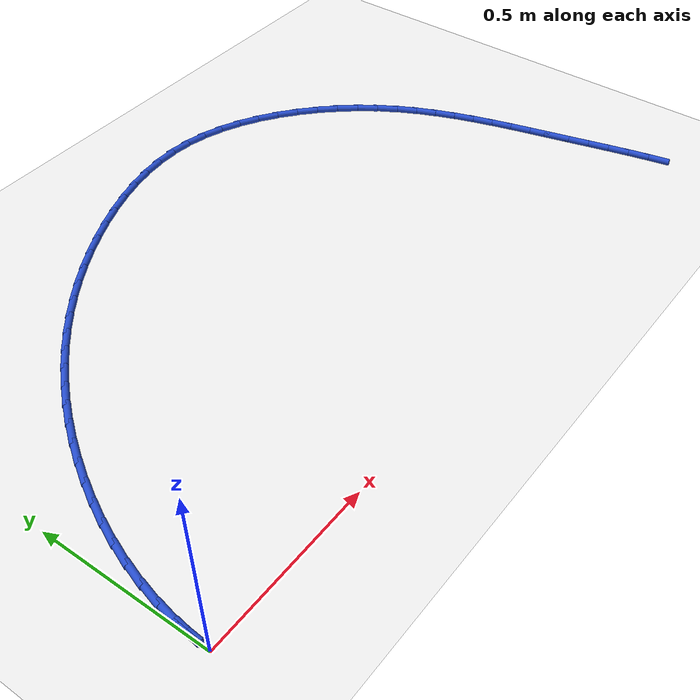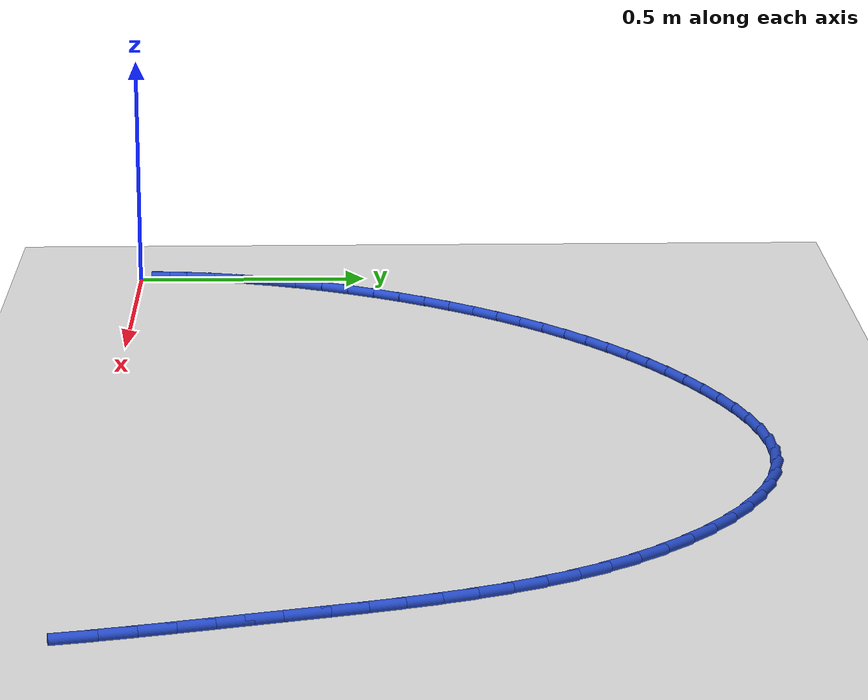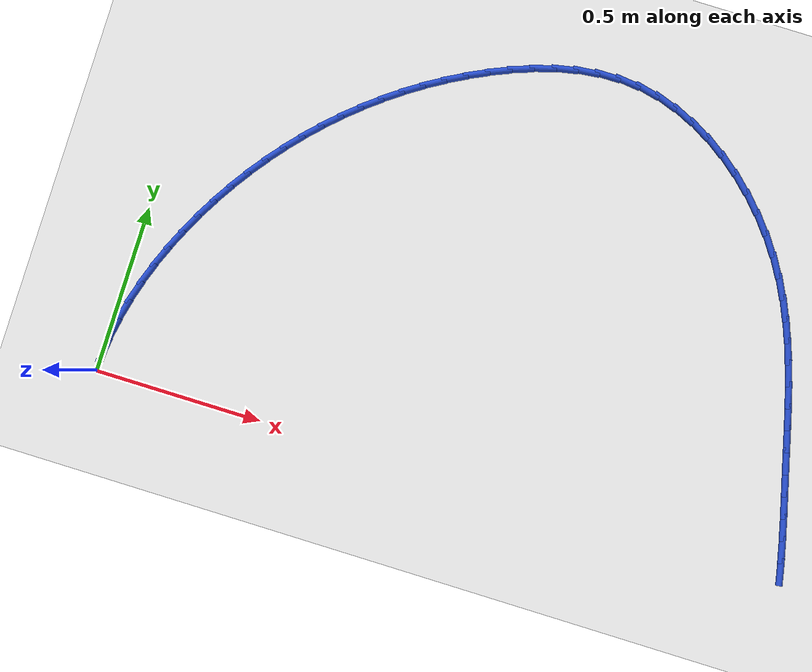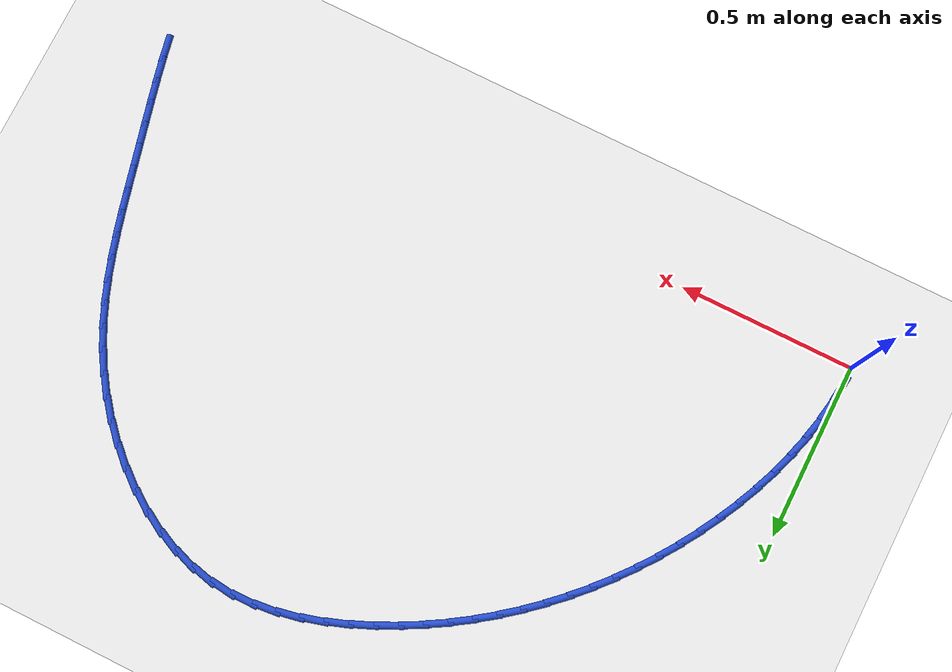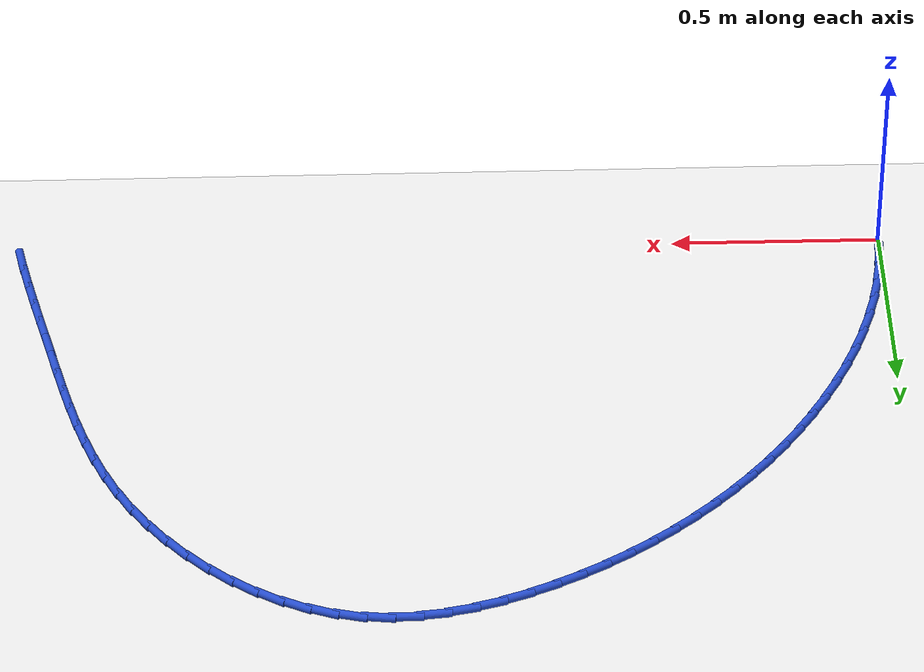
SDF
<sdf version="1.6">
 <world name="default">
  <model name="ground_plane">
   <static>1</static>
   <link name="link">
    <collision name="collision">
     <geometry><plane><normal>0 0 1</normal><size>100 100</size></plane></geometry>
     <surface><friction><ode><mu>100</mu><mu2>50</mu2></ode></friction></surface>
    </collision>
    <visual name="visual">
     <cast_shadows>0</cast_shadows>
     <geometry><plane><normal>0 0 1</normal><size>100 100</size></plane></geometry>
     <material>
      <script><uri>file://media/materials/scripts/gazebo.material</uri><name>Gazebo/WhiteGlow</name></script>
     </material>
    </visual>
   </link>
  </model>
  <model name="line">
   <link name="link_1">
    <pose>0.0032852836792644936 0.06355695641453675 0.01 0 1.57 1.4517525794886075</pose>
    <collision name="collision">
     <geometry><cylinder><radius>0.01</radius><length>0.08</length></cylinder></geometry>
    </collision>
    <visual name="visual">
     <material>
      <script><name>Gazebo/Blue</name><uri>file://media/materials/scripts/gazebo.material</uri></script>
     </material>
     <geometry><cylinder><radius>0.01</radius><length>0.08</length></cylinder></geometry>
    </visual>
   </link>
   <link name="link_2">
    <pose>0.010834183985885508 0.126669948162865 0.01 0 1.57 1.3880498268081956</pose>
    <collision name="collision">
     <geometry><cylinder><radius>0.01</radius><length>0.08</length></cylinder></geometry>
    </collision>
    <visual name="visual">
     <material>
      <script><name>Gazebo/Blue</name><uri>file://media/materials/scripts/gazebo.material</uri></script>
     </material>
     <geometry><cylinder><radius>0.01</radius><length>0.08</length></cylinder></geometry>
    </visual>
   </link>
   <link name="link_3">
    <pose>0.022394339055184558 0.1892220567013101 0.01 0 1.57 1.328093450747287</pose>
    <collision name="collision">
     <geometry><cylinder><radius>0.01</radius><length>0.08</length></cylinder></geometry>
    </collision>
    <visual name="visual">
     <material>
      <script><name>Gazebo/Blue</name><uri>file://media/materials/scripts/gazebo.material</uri></script>
     </material>
     <geometry><cylinder><radius>0.01</radius><length>0.08</length></cylinder></geometry>
    </visual>
   </link>
   <link name="link_4">
    <pose>0.03771338702248321 0.251096363486198 0.01 0 1.57 1.2718209619561152</pose>
    <collision name="collision">
     <geometry><cylinder><radius>0.01</radius><length>0.08</length></cylinder></geometry>
    </collision>
    <visual name="visual">
     <material>
      <script><name>Gazebo/Blue</name><uri>file://media/materials/scripts/gazebo.material</uri></script>
     </material>
     <geometry><cylinder><radius>0.01</radius><length>0.08</length></cylinder></geometry>
    </visual>
   </link>
   <link name="link_5">
    <pose>0.05653896602310301 0.3121759499738542 0.01 0 1.57 1.219085398320283</pose>
    <collision name="collision">
     <geometry><cylinder><radius>0.01</radius><length>0.08</length></cylinder></geometry>
    </collision>
    <visual name="visual">
     <material>
      <script><name>Gazebo/Blue</name><uri>file://media/materials/scripts/gazebo.material</uri></script>
     </material>
     <geometry><cylinder><radius>0.01</radius><length>0.08</length></cylinder></geometry>
    </visual>
   </link>
   <link name="link_6">
    <pose>0.07861871419236541 0.37234389762060394 0.01 0 1.57 1.169680494458362</pose>
    <collision name="collision">
     <geometry><cylinder><radius>0.01</radius><length>0.08</length></cylinder></geometry>
    </collision>
    <visual name="visual">
     <material>
      <script><name>Gazebo/Blue</name><uri>file://media/materials/scripts/gazebo.material</uri></script>
     </material>
     <geometry><cylinder><radius>0.01</radius><length>0.08</length></cylinder></geometry>
    </visual>
   </link>
   <link name="link_7">
    <pose>0.10370026966559204 0.43148328788277324 0.01 0 1.57 1.1233615335534624</pose>
    <collision name="collision">
     <geometry><cylinder><radius>0.01</radius><length>0.08</length></cylinder></geometry>
    </collision>
    <visual name="visual">
     <material>
      <script><name>Gazebo/Blue</name><uri>file://media/materials/scripts/gazebo.material</uri></script>
     </material>
     <geometry><cylinder><radius>0.01</radius><length>0.08</length></cylinder></geometry>
    </visual>
   </link>
   <link name="link_8">
    <pose>0.13153127057810438 0.4894772022166874 0.01 0 1.57 1.079860983386931</pose>
    <collision name="collision">
     <geometry><cylinder><radius>0.01</radius><length>0.08</length></cylinder></geometry>
    </collision>
    <visual name="visual">
     <material>
      <script><name>Gazebo/Blue</name><uri>file://media/materials/scripts/gazebo.material</uri></script>
     </material>
     <geometry><cylinder><radius>0.01</radius><length>0.08</length></cylinder></geometry>
    </visual>
   </link>
   <link name="link_9">
    <pose>0.16185938823858761 0.546208728107812 0.01 0 1.57 1.0383617749348306</pose>
    <collision name="collision">
     <geometry><cylinder><radius>0.01</radius><length>0.08</length></cylinder></geometry>
    </collision>
    <visual name="visual">
     <material>
      <script><name>Gazebo/Blue</name><uri>file://media/materials/scripts/gazebo.material</uri></script>
     </material>
     <geometry><cylinder><radius>0.01</radius><length>0.08</length></cylinder></geometry>
    </visual>
   </link>
   <link name="link_10">
    <pose>0.19447729656025886 0.6015691321031658 0.01 0 1.57 0.9970833001065849</pose>
    <collision name="collision">
     <geometry><cylinder><radius>0.01</radius><length>0.08</length></cylinder></geometry>
    </collision>
    <visual name="visual">
     <material>
      <script><name>Gazebo/Blue</name><uri>file://media/materials/scripts/gazebo.material</uri></script>
     </material>
     <geometry><cylinder><radius>0.01</radius><length>0.08</length></cylinder></geometry>
    </visual>
   </link>
   <link name="link_11">
    <pose>0.2293117031021381 0.6554740408829375 0.01 0 1.57 0.9556784181797072</pose>
    <collision name="collision">
     <geometry><cylinder><radius>0.01</radius><length>0.08</length></cylinder></geometry>
    </collision>
    <visual name="visual">
     <material>
      <script><name>Gazebo/Blue</name><uri>file://media/materials/scripts/gazebo.material</uri></script>
     </material>
     <geometry><cylinder><radius>0.01</radius><length>0.08</length></cylinder></geometry>
    </visual>
   </link>
   <link name="link_12">
    <pose>0.2663141569486794 0.7078435959852385 0.01 0 1.57 0.9141081255478017</pose>
    <collision name="collision">
     <geometry><cylinder><radius>0.01</radius><length>0.08</length></cylinder></geometry>
    </collision>
    <visual name="visual">
     <material>
      <script><name>Gazebo/Blue</name><uri>file://media/materials/scripts/gazebo.material</uri></script>
     </material>
     <geometry><cylinder><radius>0.01</radius><length>0.08</length></cylinder></geometry>
    </visual>
   </link>
   <link name="link_13">
    <pose>0.30543620718433667 0.7585979389481801 0.01 0 1.57 0.872334837784852</pose>
    <collision name="collision">
     <geometry><cylinder><radius>0.01</radius><length>0.08</length></cylinder></geometry>
    </collision>
    <visual name="visual">
     <material>
      <script><name>Gazebo/Blue</name><uri>file://media/materials/scripts/gazebo.material</uri></script>
     </material>
     <geometry><cylinder><radius>0.01</radius><length>0.08</length></cylinder></geometry>
    </visual>
   </link>
   <link name="link_14">
    <pose>0.3466294028935635 0.8076572113098732 0.01 0 1.57 0.8303230818568028</pose>
    <collision name="collision">
     <geometry><cylinder><radius>0.01</radius><length>0.08</length></cylinder></geometry>
    </collision>
    <visual name="visual">
     <material>
      <script><name>Gazebo/Blue</name><uri>file://media/materials/scripts/gazebo.material</uri></script>
     </material>
     <geometry><cylinder><radius>0.01</radius><length>0.08</length></cylinder></geometry>
    </visual>
   </link>
   <link name="link_15">
    <pose>0.3898452931608141 0.8549415546084302 0.01 0 1.57 0.7880402084933067</pose>
    <collision name="collision">
     <geometry><cylinder><radius>0.01</radius><length>0.08</length></cylinder></geometry>
    </collision>
    <visual name="visual">
     <material>
      <script><name>Gazebo/Blue</name><uri>file://media/materials/scripts/gazebo.material</uri></script>
     </material>
     <geometry><cylinder><radius>0.01</radius><length>0.08</length></cylinder></geometry>
    </visual>
   </link>
   <link name="link_16">
    <pose>0.43503542707054205 0.9003711103819613 0.01 0 1.57 0.7454571224798461</pose>
    <collision name="collision">
     <geometry><cylinder><radius>0.01</radius><length>0.08</length></cylinder></geometry>
    </collision>
    <visual name="visual">
     <material>
      <script><name>Gazebo/Blue</name><uri>file://media/materials/scripts/gazebo.material</uri></script>
     </material>
     <geometry><cylinder><radius>0.01</radius><length>0.08</length></cylinder></geometry>
    </visual>
   </link>
   <link name="link_17">
    <pose>0.4821513537072016 0.9438660201685787 0.01 0 1.57 0.7025490256778014</pose>
    <collision name="collision">
     <geometry><cylinder><radius>0.01</radius><length>0.08</length></cylinder></geometry>
    </collision>
    <visual name="visual">
     <material>
      <script><name>Gazebo/Blue</name><uri>file://media/materials/scripts/gazebo.material</uri></script>
     </material>
     <geometry><cylinder><radius>0.01</radius><length>0.08</length></cylinder></geometry>
    </visual>
   </link>
   <link name="link_18">
    <pose>0.5311446221552462 0.9853464255063928 0.01 0 1.57 0.6592961640274405</pose>
    <collision name="collision">
     <geometry><cylinder><radius>0.01</radius><length>0.08</length></cylinder></geometry>
    </collision>
    <visual name="visual">
     <material>
      <script><name>Gazebo/Blue</name><uri>file://media/materials/scripts/gazebo.material</uri></script>
     </material>
     <geometry><cylinder><radius>0.01</radius><length>0.08</length></cylinder></geometry>
    </visual>
   </link>
   <link name="link_19">
    <pose>0.5819667814991301 1.024732467933516 0.01 0 1.57 0.615684565750557</pose>
    <collision name="collision">
     <geometry><cylinder><radius>0.01</radius><length>0.08</length></cylinder></geometry>
    </collision>
    <visual name="visual">
     <material>
      <script><name>Gazebo/Blue</name><uri>file://media/materials/scripts/gazebo.material</uri></script>
     </material>
     <geometry><cylinder><radius>0.01</radius><length>0.08</length></cylinder></geometry>
    </visual>
   </link>
   <link name="link_20">
    <pose>0.6345693808233068 1.0619442889880588 0.01 0 1.57 0.571706753635723</pose>
    <collision name="collision">
     <geometry><cylinder><radius>0.01</radius><length>0.08</length></cylinder></geometry>
    </collision>
    <visual name="visual">
     <material>
      <script><name>Gazebo/Blue</name><uri>file://media/materials/scripts/gazebo.material</uri></script>
     </material>
     <geometry><cylinder><radius>0.01</radius><length>0.08</length></cylinder></geometry>
    </visual>
   </link>
   <link name="link_21">
    <pose>0.6889039692122304 1.0969020302081327 0.01 0 1.57 0.5273624099324696</pose>
    <collision name="collision">
     <geometry><cylinder><radius>0.01</radius><length>0.08</length></cylinder></geometry>
    </collision>
    <visual name="visual">
     <material>
      <script><name>Gazebo/Blue</name><uri>file://media/materials/scripts/gazebo.material</uri></script>
     </material>
     <geometry><cylinder><radius>0.01</radius><length>0.08</length></cylinder></geometry>
    </visual>
   </link>
   <link name="link_22">
    <pose>0.744922095750355 1.1295258331318494 0.01 0 1.57 0.4826589683662222</pose>
    <collision name="collision">
     <geometry><cylinder><radius>0.01</radius><length>0.08</length></cylinder></geometry>
    </collision>
    <visual name="visual">
     <material>
      <script><name>Gazebo/Blue</name><uri>file://media/materials/scripts/gazebo.material</uri></script>
     </material>
     <geometry><cylinder><radius>0.01</radius><length>0.08</length></cylinder></geometry>
    </visual>
   </link>
   <link name="link_23">
    <pose>0.8025753095221341 1.15973583929732 0.01 0 1.57 0.43751893349559245</pose>
    <collision name="collision">
     <geometry><cylinder><radius>0.01</radius><length>0.08</length></cylinder></geometry>
    </collision>
    <visual name="visual">
     <material>
      <script><name>Gazebo/Blue</name><uri>file://media/materials/scripts/gazebo.material</uri></script>
     </material>
     <geometry><cylinder><radius>0.01</radius><length>0.08</length></cylinder></geometry>
    </visual>
   </link>
   <link name="link_24">
    <pose>0.8618113246228886 1.187443669066937 0.01 0 1.57 0.38873892316470765</pose>
    <collision name="collision">
     <geometry><cylinder><radius>0.01</radius><length>0.08</length></cylinder></geometry>
    </collision>
    <visual name="visual">
     <material>
      <script><name>Gazebo/Blue</name><uri>file://media/materials/scripts/gazebo.material</uri></script>
     </material>
     <geometry><cylinder><radius>0.01</radius><length>0.08</length></cylinder></geometry>
    </visual>
   </link>
   <link name="link_25">
    <pose>0.9224518184348016 1.2122808948179882 0.01 0 1.57 0.33177635778665737</pose>
    <collision name="collision">
     <geometry><cylinder><radius>0.01</radius><length>0.08</length></cylinder></geometry>
    </collision>
    <visual name="visual">
     <material>
      <script><name>Gazebo/Blue</name><uri>file://media/materials/scripts/gazebo.material</uri></script>
     </material>
     <geometry><cylinder><radius>0.01</radius><length>0.08</length></cylinder></geometry>
    </visual>
   </link>
   <link name="link_26">
    <pose>0.9841669526507429 1.23354242778794 0.01 0 1.57 0.2651892281506431</pose>
    <collision name="collision">
     <geometry><cylinder><radius>0.01</radius><length>0.08</length></cylinder></geometry>
    </collision>
    <visual name="visual">
     <material>
      <script><name>Gazebo/Blue</name><uri>file://media/materials/scripts/gazebo.material</uri></script>
     </material>
     <geometry><cylinder><radius>0.01</radius><length>0.08</length></cylinder></geometry>
    </visual>
   </link>
   <link name="link_27">
    <pose>1.0466179039677175 1.2505032149520576 0.01 0 1.57 0.18766794079214746</pose>
    <collision name="collision">
     <geometry><cylinder><radius>0.01</radius><length>0.08</length></cylinder></geometry>
    </collision>
    <visual name="visual">
     <material>
      <script><name>Gazebo/Blue</name><uri>file://media/materials/scripts/gazebo.material</uri></script>
     </material>
     <geometry><cylinder><radius>0.01</radius><length>0.08</length></cylinder></geometry>
    </visual>
   </link>
   <link name="link_28">
    <pose>1.1094658490827283 1.2624382032856039 0.01 0 1.57 0.09799252857023347</pose>
    <collision name="collision">
     <geometry><cylinder><radius>0.01</radius><length>0.08</length></cylinder></geometry>
    </collision>
    <visual name="visual">
     <material>
      <script><name>Gazebo/Blue</name><uri>file://media/materials/scripts/gazebo.material</uri></script>
     </material>
     <geometry><cylinder><radius>0.01</radius><length>0.08</length></cylinder></geometry>
    </visual>
   </link>
   <link name="link_29">
    <pose>1.1723719646927822 1.2686223397638443 0.01 0 1.57 -0.004658908337895533</pose>
    <collision name="collision">
     <geometry><cylinder><radius>0.01</radius><length>0.08</length></cylinder></geometry>
    </collision>
    <visual name="visual">
     <material>
      <script><name>Gazebo/Blue</name><uri>file://media/materials/scripts/gazebo.material</uri></script>
     </material>
     <geometry><cylinder><radius>0.01</radius><length>0.08</length></cylinder></geometry>
    </visual>
   </link>
   <link name="link_30">
    <pose>1.2349974274948816 1.268330571362042 0.01 0 1.57 -0.1200609073179534</pose>
    <collision name="collision">
     <geometry><cylinder><radius>0.01</radius><length>0.08</length></cylinder></geometry>
    </collision>
    <visual name="visual">
     <material>
      <script><name>Gazebo/Blue</name><uri>file://media/materials/scripts/gazebo.material</uri></script>
     </material>
     <geometry><cylinder><radius>0.01</radius><length>0.08</length></cylinder></geometry>
    </visual>
   </link>
   <link name="link_31">
    <pose>1.2970032095732906 1.2608501237122356 0.01 0 1.57 -0.23860511812063318</pose>
    <collision name="collision">
     <geometry><cylinder><radius>0.01</radius><length>0.08</length></cylinder></geometry>
    </collision>
    <visual name="visual">
     <material>
      <script><name>Gazebo/Blue</name><uri>file://media/materials/scripts/gazebo.material</uri></script>
     </material>
     <geometry><cylinder><radius>0.01</radius><length>0.08</length></cylinder></geometry>
    </visual>
   </link>
   <link name="link_32">
    <pose>1.3580413668241254 1.2460032761927267 0.01 0 1.57 -0.347996704862966</pose>
    <collision name="collision">
     <geometry><cylinder><radius>0.01</radius><length>0.08</length></cylinder></geometry>
    </collision>
    <visual name="visual">
     <material>
      <script><name>Gazebo/Blue</name><uri>file://media/materials/scripts/gazebo.material</uri></script>
     </material>
     <geometry><cylinder><radius>0.01</radius><length>0.08</length></cylinder></geometry>
    </visual>
   </link>
   <link name="link_33">
    <pose>1.4177517833228344 1.2243427299875842 0.01 0 1.57 -0.447780378503715</pose>
    <collision name="collision">
     <geometry><cylinder><radius>0.01</radius><length>0.08</length></cylinder></geometry>
    </collision>
    <visual name="visual">
     <material>
      <script><name>Gazebo/Blue</name><uri>file://media/materials/scripts/gazebo.material</uri></script>
     </material>
     <geometry><cylinder><radius>0.01</radius><length>0.08</length></cylinder></geometry>
    </visual>
   </link>
   <link name="link_34">
    <pose>1.4757734675667995 1.1964737290623806 0.01 0 1.57 -0.5389605019919883</pose>
    <collision name="collision">
     <geometry><cylinder><radius>0.01</radius><length>0.08</length></cylinder></geometry>
    </collision>
    <visual name="visual">
     <material>
      <script><name>Gazebo/Blue</name><uri>file://media/materials/scripts/gazebo.material</uri></script>
     </material>
     <geometry><cylinder><radius>0.01</radius><length>0.08</length></cylinder></geometry>
    </visual>
   </link>
   <link name="link_35">
    <pose>1.5317454280534015 1.1630015173826878 0.01 0 1.57 -0.622867277512043</pose>
    <collision name="collision">
     <geometry><cylinder><radius>0.01</radius><length>0.08</length></cylinder></geometry>
    </collision>
    <visual name="visual">
     <material>
      <script><name>Gazebo/Blue</name><uri>file://media/materials/scripts/gazebo.material</uri></script>
     </material>
     <geometry><cylinder><radius>0.01</radius><length>0.08</length></cylinder></geometry>
    </visual>
   </link>
   <link name="link_36">
    <pose>1.585306673280022 1.1245313389140785 0.01 0 1.57 -0.7009605340540436</pose>
    <collision name="collision">
     <geometry><cylinder><radius>0.01</radius><length>0.08</length></cylinder></geometry>
    </collision>
    <visual name="visual">
     <material>
      <script><name>Gazebo/Blue</name><uri>file://media/materials/scripts/gazebo.material</uri></script>
     </material>
     <geometry><cylinder><radius>0.01</radius><length>0.08</length></cylinder></geometry>
    </visual>
   </link>
   <link name="link_37">
    <pose>1.6360962117440416 1.0816684376221248 0.01 0 1.57 -0.7747264265162331</pose>
    <collision name="collision">
     <geometry><cylinder><radius>0.01</radius><length>0.08</length></cylinder></geometry>
    </collision>
    <visual name="visual">
     <material>
      <script><name>Gazebo/Blue</name><uri>file://media/materials/scripts/gazebo.material</uri></script>
     </material>
     <geometry><cylinder><radius>0.01</radius><length>0.08</length></cylinder></geometry>
    </visual>
   </link>
   <link name="link_38">
    <pose>1.6837530519428416 1.0350180574723988 0.01 0 1.57 -0.8456413488634422</pose>
    <collision name="collision">
     <geometry><cylinder><radius>0.01</radius><length>0.08</length></cylinder></geometry>
    </collision>
    <visual name="visual">
     <material>
      <script><name>Gazebo/Blue</name><uri>file://media/materials/scripts/gazebo.material</uri></script>
     </material>
     <geometry><cylinder><radius>0.01</radius><length>0.08</length></cylinder></geometry>
    </visual>
   </link>
   <link name="link_39">
    <pose>1.7279162023738026 0.9851854424304727 0.01 0 1.57 -0.9151799700482591</pose>
    <collision name="collision">
     <geometry><cylinder><radius>0.01</radius><length>0.08</length></cylinder></geometry>
    </collision>
    <visual name="visual">
     <material>
      <script><name>Gazebo/Blue</name><uri>file://media/materials/scripts/gazebo.material</uri></script>
     </material>
     <geometry><cylinder><radius>0.01</radius><length>0.08</length></cylinder></geometry>
    </visual>
   </link>
   <link name="link_40">
    <pose>1.768224671534306 0.932775836461919 0.01 0 1.57 -0.9848389341198373</pose>
    <collision name="collision">
     <geometry><cylinder><radius>0.01</radius><length>0.08</length></cylinder></geometry>
    </collision>
    <visual name="visual">
     <material>
      <script><name>Gazebo/Blue</name><uri>file://media/materials/scripts/gazebo.material</uri></script>
     </material>
     <geometry><cylinder><radius>0.01</radius><length>0.08</length></cylinder></geometry>
    </visual>
   </link>
   <link name="link_41">
    <pose>1.8043189873359753 0.8783937075547905 0.01 0 1.57 -1.053719617317044</pose>
    <collision name="collision">
     <geometry><cylinder><radius>0.01</radius><length>0.08</length></cylinder></geometry>
    </collision>
    <visual name="visual">
     <material>
      <script><name>Gazebo/Blue</name><uri>file://media/materials/scripts/gazebo.material</uri></script>
     </material>
     <geometry><cylinder><radius>0.01</radius><length>0.08</length></cylinder></geometry>
    </visual>
   </link>
   <link name="link_42">
    <pose>1.8360985632926845 0.8225113086619338 0.01 0 1.57 -1.116733350851094</pose>
    <collision name="collision">
     <geometry><cylinder><radius>0.01</radius><length>0.08</length></cylinder></geometry>
    </collision>
    <visual name="visual">
     <material>
      <script><name>Gazebo/Blue</name><uri>file://media/materials/scripts/gazebo.material</uri></script>
     </material>
     <geometry><cylinder><radius>0.01</radius><length>0.08</length></cylinder></geometry>
    </visual>
   </link>
   <link name="link_43">
    <pose>1.8640120846591435 0.7653203750792816 0.01 0 1.57 -1.1722656158426257</pose>
    <collision name="collision">
     <geometry><cylinder><radius>0.01</radius><length>0.08</length></cylinder></geometry>
    </collision>
    <visual name="visual">
     <material>
      <script><name>Gazebo/Blue</name><uri>file://media/materials/scripts/gazebo.material</uri></script>
     </material>
     <geometry><cylinder><radius>0.01</radius><length>0.08</length></cylinder></geometry>
    </visual>
   </link>
   <link name="link_44">
    <pose>1.8885783546012005 0.7069768323010288 0.01 0 1.57 -1.2196525449637912</pose>
    <collision name="collision">
     <geometry><cylinder><radius>0.01</radius><length>0.08</length></cylinder></geometry>
    </collision>
    <visual name="visual">
     <material>
      <script><name>Gazebo/Blue</name><uri>file://media/materials/scripts/gazebo.material</uri></script>
     </material>
     <geometry><cylinder><radius>0.01</radius><length>0.08</length></cylinder></geometry>
    </visual>
   </link>
   <link name="link_45">
    <pose>1.910316176284703 0.647636605821371 0.01 0 1.57 -1.2585291316010665</pose>
    <collision name="collision">
     <geometry><cylinder><radius>0.01</radius><length>0.08</length></cylinder></geometry>
    </collision>
    <visual name="visual">
     <material>
      <script><name>Gazebo/Blue</name><uri>file://media/materials/scripts/gazebo.material</uri></script>
     </material>
     <geometry><cylinder><radius>0.01</radius><length>0.08</length></cylinder></geometry>
    </visual>
   </link>
   <link name="link_46">
    <pose>1.9297443528754958 0.587455621134502 0.01 0 1.57 -1.288747335360709</pose>
    <collision name="collision">
     <geometry><cylinder><radius>0.01</radius><length>0.08</length></cylinder></geometry>
    </collision>
    <visual name="visual">
     <material>
      <script><name>Gazebo/Blue</name><uri>file://media/materials/scripts/gazebo.material</uri></script>
     </material>
     <geometry><cylinder><radius>0.01</radius><length>0.08</length></cylinder></geometry>
    </visual>
   </link>
   <link name="link_47">
    <pose>1.9473816875394285 0.5265898037346175 0.01 0 1.57 -1.3102947681176838</pose>
    <collision name="collision">
     <geometry><cylinder><radius>0.01</radius><length>0.08</length></cylinder></geometry>
    </collision>
    <visual name="visual">
     <material>
      <script><name>Gazebo/Blue</name><uri>file://media/materials/scripts/gazebo.material</uri></script>
     </material>
     <geometry><cylinder><radius>0.01</radius><length>0.08</length></cylinder></geometry>
    </visual>
   </link>
   <link name="link_48">
    <pose>1.9637469834423467 0.4651950791159121 0.01 0 1.57 -1.3232269605722418</pose>
    <collision name="collision">
     <geometry><cylinder><radius>0.01</radius><length>0.08</length></cylinder></geometry>
    </collision>
    <visual name="visual">
     <material>
      <script><name>Gazebo/Blue</name><uri>file://media/materials/scripts/gazebo.material</uri></script>
     </material>
     <geometry><cylinder><radius>0.01</radius><length>0.08</length></cylinder></geometry>
    </visual>
   </link>
   <link name="link_49">
    <pose>1.9793590437500972 0.4034273727725809 0.01 0 1.57 -1.3276187290260235</pose>
    <collision name="collision">
     <geometry><cylinder><radius>0.01</radius><length>0.08</length></cylinder></geometry>
    </collision>
    <visual name="visual">
     <material>
      <script><name>Gazebo/Blue</name><uri>file://media/materials/scripts/gazebo.material</uri></script>
     </material>
     <geometry><cylinder><radius>0.01</radius><length>0.08</length></cylinder></geometry>
    </visual>
   </link>
   <link name="link_50">
    <pose>1.9947366716285284 0.3414426101988187 0.01 0 1.57 -1.325474322729032</pose>
    <collision name="collision">
     <geometry><cylinder><radius>0.01</radius><length>0.08</length></cylinder></geometry>
    </collision>
    <visual name="visual">
     <material>
      <script><name>Gazebo/Blue</name><uri>file://media/materials/scripts/gazebo.material</uri></script>
     </material>
     <geometry><cylinder><radius>0.01</radius><length>0.08</length></cylinder></geometry>
    </visual>
   </link>
   <link name="link_51">
    <pose>2.0102769256238755 0.2793721751122559 0.01 0 1.57 -1.3257789313719166</pose>
    <collision name="collision">
     <geometry><cylinder><radius>0.01</radius><length>0.08</length></cylinder></geometry>
    </collision>
    <visual name="visual">
     <material>
      <script><name>Gazebo/Blue</name><uri>file://media/materials/scripts/gazebo.material</uri></script>
     </material>
     <geometry><cylinder><radius>0.01</radius><length>0.08</length></cylinder></geometry>
    </visual>
   </link>
   <link name="link_52">
    <pose>2.025814028479434 0.21723399249565276 0.01 0 1.57 -1.331112130635456</pose>
    <collision name="collision">
     <geometry><cylinder><radius>0.01</radius><length>0.08</length></cylinder></geometry>
    </collision>
    <visual name="visual">
     <material>
      <script><name>Gazebo/Blue</name><uri>file://media/materials/scripts/gazebo.material</uri></script>
     </material>
     <geometry><cylinder><radius>0.01</radius><length>0.08</length></cylinder></geometry>
    </visual>
   </link>
   <link name="link_53">
    <pose>2.0410196654963815 0.1550132223718016 0.01 0 1.57 -1.3414894126625896</pose>
    <collision name="collision">
     <geometry><cylinder><radius>0.01</radius><length>0.08</length></cylinder></geometry>
    </collision>
    <visual name="visual">
     <material>
      <script><name>Gazebo/Blue</name><uri>file://media/materials/scripts/gazebo.material</uri></script>
     </material>
     <geometry><cylinder><radius>0.01</radius><length>0.08</length></cylinder></geometry>
    </visual>
   </link>
   <link name="link_54">
    <pose>2.055565506174149 0.09269502157811457 0.01 0 1.57 -1.3569517482541893</pose>
    <collision name="collision">
     <geometry><cylinder><radius>0.01</radius><length>0.08</length></cylinder></geometry>
    </collision>
    <visual name="visual">
     <material>
      <script><name>Gazebo/Blue</name><uri>file://media/materials/scripts/gazebo.material</uri></script>
     </material>
     <geometry><cylinder><radius>0.01</radius><length>0.08</length></cylinder></geometry>
    </visual>
   </link>
   <link name="link_55">
    <pose>2.0691232200121688 0.030264546952003528 0.01 0 1.57 -1.3775582435233633</pose>
    <collision name="collision">
     <geometry><cylinder><radius>0.01</radius><length>0.08</length></cylinder></geometry>
    </collision>
    <visual name="visual">
     <material>
      <script><name>Gazebo/Blue</name><uri>file://media/materials/scripts/gazebo.material</uri></script>
     </material>
     <geometry><cylinder><radius>0.01</radius><length>0.08</length></cylinder></geometry>
    </visual>
   </link>
   <link name="link_111">
    <pose>0.00334240867174173 0.06352021297291634 0.01 0 1.57 1.5182252036189157</pose>
    <collision name="collision">
     <geometry><cylinder><radius>0.01</radius><length>0.08</length></cylinder></geometry>
    </collision>
    <visual name="visual">
     <material>
      <script><name>Gazebo/Blue</name><uri>file://media/materials/scripts/gazebo.material</uri></script>
     </material>
     <geometry><cylinder><radius>0.01</radius><length>0.08</length></cylinder></geometry>
    </visual>
   </link>
  </model>
 </world>
</sdf>
